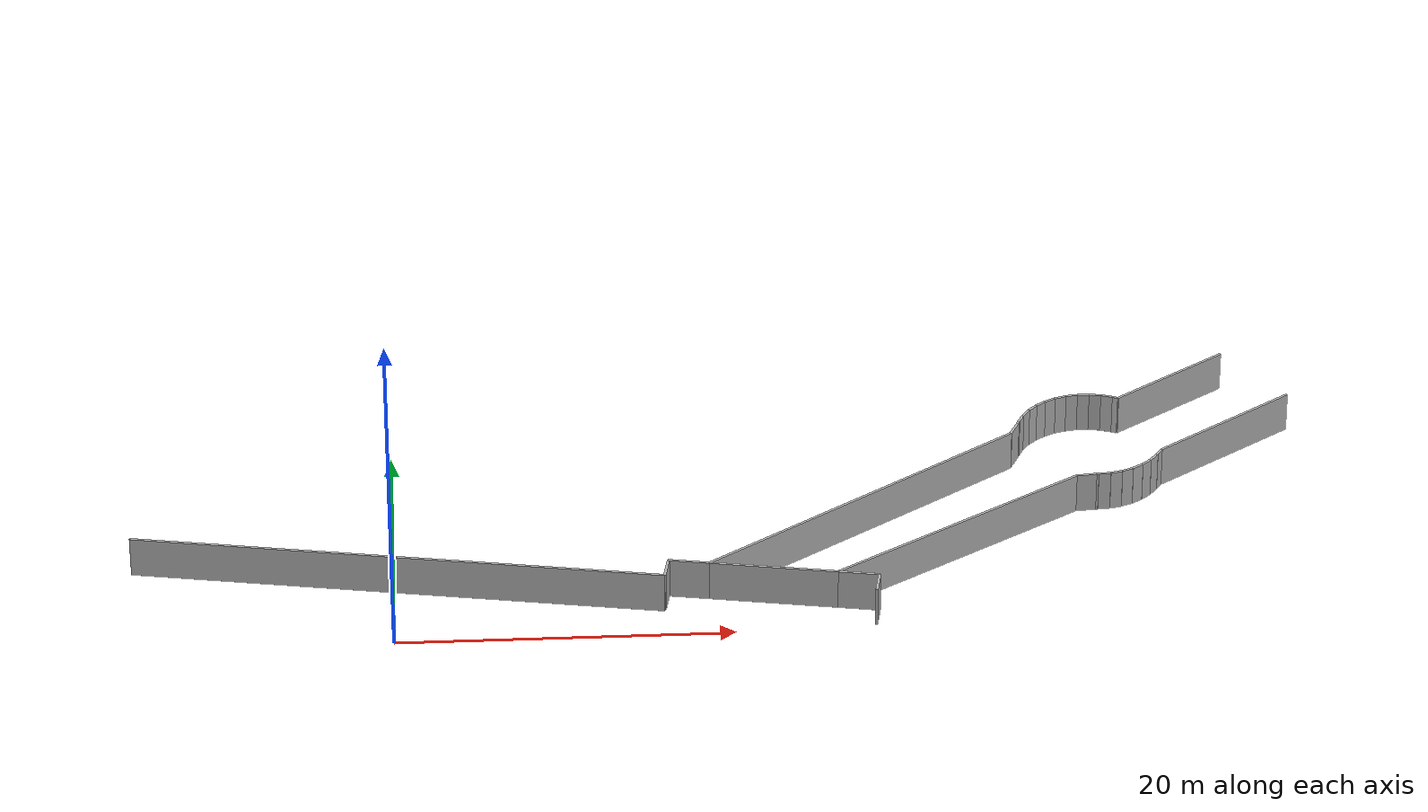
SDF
<sdf version="1.6">
 <model name="sps_1002">
  <static>1</static>
  <allow_auto_disable>0</allow_auto_disable>
  <link name="Wall124">
   <collision name="collision"><geometry><box><size>31.9575 0.15 2.5</size></box></geometry></collision>
   <visual name="visual">
    <geometry><box><size>31.9575 0.15 2.5</size></box></geometry>
    <transparency>0.0</transparency>
   </visual>
   <pose>0.191642 5.38922 1.25 0 0 -0.179443</pose>
  </link>
  <link name="Wall125">
   <collision name="collision"><geometry><box><size>2.43988 0.15 2.5</size></box></geometry></collision>
   <visual name="visual">
    <geometry><box><size>2.43988 0.15 2.5</size></box></geometry>
    <transparency>0.0</transparency>
   </visual>
   <pose>17.4035 3.91408 1.25 0 0 -0.179321</pose>
  </link>
  <link name="Wall292">
   <collision name="collision"><geometry><box><size>1.62039 0.15 2.5</size></box></geometry></collision>
   <visual name="visual">
    <geometry><box><size>1.62039 0.15 2.5</size></box></geometry>
    <transparency>0.0</transparency>
   </visual>
   <pose>16.0585 3.33449 1.25 0 -0 1.39133</pose>
  </link>
  <link name="Wall358">
   <collision name="collision"><geometry><box><size>1.61971 0.15 2.5</size></box></geometry></collision>
   <visual name="visual">
    <geometry><box><size>1.61971 0.15 2.5</size></box></geometry>
    <transparency>0.0</transparency>
   </visual>
   <pose>28.3579 1.10359 1.25 0 -0 1.39152</pose>
  </link>
  <link name="Wall359">
   <collision name="collision"><geometry><box><size>2.44002 0.15 2.5</size></box></geometry></collision>
   <visual name="visual">
    <geometry><box><size>2.44002 0.15 2.5</size></box></geometry>
    <transparency>0.0</transparency>
   </visual>
   <pose>27.3019 2.11827 1.25 0 -0 2.9621</pose>
  </link>
  <link name="Wall1292">
   <collision name="collision"><geometry><box><size>7.62004 0.15 2.5</size></box></geometry></collision>
   <visual name="visual">
    <geometry><box><size>7.62004 0.15 2.5</size></box></geometry>
    <transparency>0.0</transparency>
   </visual>
   <pose>22.3527 3.01628 1.25 0 -0 2.9621</pose>
  </link>
  <link name="Wall1293">
   <collision name="collision"><geometry><box><size>23.2863 0.15 2.5</size></box></geometry></collision>
   <visual name="visual">
    <geometry><box><size>23.2863 0.15 2.5</size></box></geometry>
    <transparency>0.0</transparency>
   </visual>
   <pose>28.1673 10.3376 1.25 0 -0 0.606977</pose>
  </link>
  <link name="Wall1294">
   <collision name="collision"><geometry><box><size>1.23548 0.15 2.5</size></box></geometry></collision>
   <visual name="visual">
    <geometry><box><size>1.23548 0.15 2.5</size></box></geometry>
    <transparency>0.0</transparency>
   </visual>
   <pose>38.0036 17.5329 1.25 0 -0 1.11325</pose>
  </link>
  <link name="Wall1295">
   <collision name="collision"><geometry><box><size>0.204407 0.15 2.5</size></box></geometry></collision>
   <visual name="visual">
    <geometry><box><size>0.204407 0.15 2.5</size></box></geometry>
    <transparency>0.0</transparency>
   </visual>
   <pose>38.3112 18.1832 1.25 0 -0 1.22345</pose>
  </link>
  <link name="Wall1296">
   <collision name="collision"><geometry><box><size>0.732523 0.15 2.5</size></box></geometry></collision>
   <visual name="visual">
    <geometry><box><size>0.732523 0.15 2.5</size></box></geometry>
    <transparency>0.0</transparency>
   </visual>
   <pose>38.5053 18.6091 1.25 0 -0 1.12082</pose>
  </link>
  <link name="Wall1297">
   <collision name="collision"><geometry><box><size>0.732354 0.15 2.5</size></box></geometry></collision>
   <visual name="visual">
    <geometry><box><size>0.732354 0.15 2.5</size></box></geometry>
    <transparency>0.0</transparency>
   </visual>
   <pose>38.8747 19.2388 1.25 0 -0 0.959654</pose>
  </link>
  <link name="Wall1298">
   <collision name="collision"><geometry><box><size>0.73259 0.15 2.5</size></box></geometry></collision>
   <visual name="visual">
    <geometry><box><size>0.73259 0.15 2.5</size></box></geometry>
    <transparency>0.0</transparency>
   </visual>
   <pose>39.3404 19.8011 1.25 0 -0 0.798536</pose>
  </link>
  <link name="Wall1299">
   <collision name="collision"><geometry><box><size>0.732496 0.15 2.5</size></box></geometry></collision>
   <visual name="visual">
    <geometry><box><size>0.732496 0.15 2.5</size></box></geometry>
    <transparency>0.0</transparency>
   </visual>
   <pose>39.8903 20.2815 1.25 0 -0 0.637502</pose>
  </link>
  <link name="Wall1300">
   <collision name="collision"><geometry><box><size>0.73235 0.15 2.5</size></box></geometry></collision>
   <visual name="visual">
    <geometry><box><size>0.73235 0.15 2.5</size></box></geometry>
    <transparency>0.0</transparency>
   </visual>
   <pose>40.5101 20.6674 1.25 0 -0 0.476358</pose>
  </link>
  <link name="Wall1301">
   <collision name="collision"><geometry><box><size>0.732238 0.15 2.5</size></box></geometry></collision>
   <visual name="visual">
    <geometry><box><size>0.732238 0.15 2.5</size></box></geometry>
    <transparency>0.0</transparency>
   </visual>
   <pose>41.1836 20.9488 1.25 0 -0 0.315187</pose>
  </link>
  <link name="Wall1302">
   <collision name="collision"><geometry><box><size>0.732676 0.15 2.5</size></box></geometry></collision>
   <visual name="visual">
    <geometry><box><size>0.732676 0.15 2.5</size></box></geometry>
    <transparency>0.0</transparency>
   </visual>
   <pose>41.8936 21.1185 1.25 0 -0 0.154055</pose>
  </link>
  <link name="Wall1303">
   <collision name="collision"><geometry><box><size>0.732257 0.15 2.5</size></box></geometry></collision>
   <visual name="visual">
    <geometry><box><size>0.732257 0.15 2.5</size></box></geometry>
    <transparency>0.0</transparency>
   </visual>
   <pose>42.6218 21.1721 1.25 0 0 -0.00708499</pose>
  </link>
  <link name="Wall1304">
   <collision name="collision"><geometry><box><size>0.732654 0.15 2.5</size></box></geometry></collision>
   <visual name="visual">
    <geometry><box><size>0.732654 0.15 2.5</size></box></geometry>
    <transparency>0.0</transparency>
   </visual>
   <pose>43.3491 21.1083 1.25 0 0 -0.167901</pose>
  </link>
  <link name="Wall1305">
   <collision name="collision"><geometry><box><size>0.732457 0.15 2.5</size></box></geometry></collision>
   <visual name="visual">
    <geometry><box><size>0.732457 0.15 2.5</size></box></geometry>
    <transparency>0.0</transparency>
   </visual>
   <pose>44.0568 20.9286 1.25 0 0 -0.329498</pose>
  </link>
  <link name="Wall1306">
   <collision name="collision"><geometry><box><size>0.344801 0.15 2.5</size></box></geometry></collision>
   <visual name="visual">
    <geometry><box><size>0.344801 0.15 2.5</size></box></geometry>
    <transparency>0.0</transparency>
   </visual>
   <pose>44.5594 20.7369 1.25 0 0 -0.438392</pose>
  </link>
  <link name="Wall1307">
   <collision name="collision"><geometry><box><size>8.46066 0.15 2.5</size></box></geometry></collision>
   <visual name="visual">
    <geometry><box><size>8.46066 0.15 2.5</size></box></geometry>
    <transparency>0.0</transparency>
   </visual>
   <pose>48.1926 23.0732 1.25 0 -0 0.605987</pose>
  </link>
  <link name="Wall1309">
   <collision name="collision"><geometry><box><size>10.3305 0.15 2.5</size></box></geometry></collision>
   <visual name="visual">
    <geometry><box><size>10.3305 0.15 2.5</size></box></geometry>
    <transparency>0.0</transparency>
   </visual>
   <pose>50.8986 17.5264 1.25 0 0 -2.53563</pose>
  </link>
  <link name="Wall1310">
   <collision name="collision"><geometry><box><size>0.653064 0.15 2.5</size></box></geometry></collision>
   <visual name="visual">
    <geometry><box><size>0.653064 0.15 2.5</size></box></geometry>
    <transparency>0.0</transparency>
   </visual>
   <pose>46.4853 14.3043 1.25 0 0 -2.11013</pose>
  </link>
  <link name="Wall1311">
   <collision name="collision"><geometry><box><size>0.732526 0.15 2.5</size></box></geometry></collision>
   <visual name="visual">
    <geometry><box><size>0.732526 0.15 2.5</size></box></geometry>
    <transparency>0.0</transparency>
   </visual>
   <pose>46.0839 13.7421 1.25 0 0 -2.26279</pose>
  </link>
  <link name="Wall1312">
   <collision name="collision"><geometry><box><size>0.732378 0.15 2.5</size></box></geometry></collision>
   <visual name="visual">
    <geometry><box><size>0.732378 0.15 2.5</size></box></geometry>
    <transparency>0.0</transparency>
   </visual>
   <pose>45.5745 13.2192 1.25 0 0 -2.4236</pose>
  </link>
  <link name="Wall1313">
   <collision name="collision"><geometry><box><size>0.732321 0.15 2.5</size></box></geometry></collision>
   <visual name="visual">
    <geometry><box><size>0.732321 0.15 2.5</size></box></geometry>
    <transparency>0.0</transparency>
   </visual>
   <pose>44.9879 12.7847 1.25 0 0 -2.58448</pose>
  </link>
  <link name="Wall1314">
   <collision name="collision"><geometry><box><size>0.732643 0.15 2.5</size></box></geometry></collision>
   <visual name="visual">
    <geometry><box><size>0.732643 0.15 2.5</size></box></geometry>
    <transparency>0.0</transparency>
   </visual>
   <pose>44.3391 12.4499 1.25 0 0 -2.74588</pose>
  </link>
  <link name="Wall1315">
   <collision name="collision"><geometry><box><size>0.732308 0.15 2.5</size></box></geometry></collision>
   <visual name="visual">
    <geometry><box><size>0.732308 0.15 2.5</size></box></geometry>
    <transparency>0.0</transparency>
   </visual>
   <pose>43.645 12.2235 1.25 0 0 -2.90682</pose>
  </link>
  <link name="Wall1316">
   <collision name="collision"><geometry><box><size>0.732558 0.15 2.5</size></box></geometry></collision>
   <visual name="visual">
    <geometry><box><size>0.732558 0.15 2.5</size></box></geometry>
    <transparency>0.0</transparency>
   </visual>
   <pose>42.9235 12.1115 1.25 0 0 -3.06829</pose>
  </link>
  <link name="Wall1317">
   <collision name="collision"><geometry><box><size>0.124047 0.15 2.5</size></box></geometry></collision>
   <visual name="visual">
    <geometry><box><size>0.124047 0.15 2.5</size></box></geometry>
    <transparency>0.0</transparency>
   </visual>
   <pose>42.4962 12.0859 1.25 0 -0 3.12191</pose>
  </link>
  <link name="Wall1318">
   <collision name="collision"><geometry><box><size>1.23519 0.15 2.5</size></box></geometry></collision>
   <visual name="visual">
    <geometry><box><size>1.23519 0.15 2.5</size></box></geometry>
    <transparency>0.0</transparency>
   </visual>
   <pose>41.8196 12.0263 1.25 0 0 -3.04295</pose>
  </link>
  <link name="Wall1319">
   <collision name="collision"><geometry><box><size>17.9121 0.15 2.5</size></box></geometry></collision>
   <visual name="visual">
    <geometry><box><size>17.9121 0.15 2.5</size></box></geometry>
    <transparency>0.0</transparency>
   </visual>
   <pose>33.6533 7.15077 1.25 0 0 -2.57401</pose>
  </link>
 </model>
</sdf>
